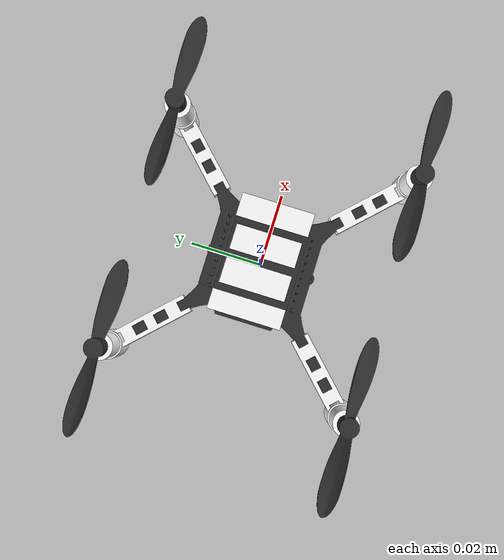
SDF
<?xml version='1.0'?>
<sdf version='1.7'>
  <model name='SAR_Base' canonical_link='SAR_Body'>
    <pose>0 0 0 0 0 0</pose>   <!--the pose is relative to the world by default-->

    <!--SAR_Body-->
    <link name='SAR_Body'>
        <pose>0 0 0 0 0 0</pose>
        <inertial> <!--inertial properties of the link mass, inertia matix-->
            <mass>37.0e-3</mass>
            <inertia>
                <ixx>17.20e-6</ixx>
                <ixy>0</ixy>
                <ixz>0</ixz>
                <iyy>17.70e-6</iyy>
                <iyz>0</iyz>
                <izz>34.20e-6</izz>
            </inertia>
            <pose>0 0 0 0 0 0</pose>
        </inertial>
        <pose>0 0 0 0 0 0</pose>
        <gravity>1</gravity>
        <self_collide>0</self_collide>
        <kinematic>0</kinematic>
        <enable_wind>0</enable_wind>

        <sensor name="imu" type="imu">
        <always_on>1</always_on>
        <update_rate>100</update_rate>
        <visualize>true</visualize>
        <topic>imu</topic>
        <enable_metrics>true</enable_metrics>
        </sensor>

        <visual name='Crazyflie_Base_Assembly'>
            <pose>0 0 0 0 0 0</pose>
            <geometry>
            <mesh>
                <uri>model://SAR_Base/meshes/Crazyflie_Base_Body.STL</uri>
                <scale>1 1 1</scale>
            </mesh>
            </geometry>
            <material>
                <!--DarkGrey-->
                <ambient>0.175 0.175 0.175 1</ambient>
                <diffuse>0.175 0.175 0.175 1</diffuse>
                <specular>0.175 0.175 0.175 1.00</specular>
            <lighting>1</lighting>
            </material>
        </visual>

        <visual name='Crazyflie_Motor_Arms'>
            <pose>0 0 0 0 0 0</pose>
            <geometry>
            <mesh>
                <uri>model://SAR_Base/meshes/Crazyflie_Motor_Arms.STL</uri>
                <scale>1 1 1</scale>
            </mesh>
            </geometry>
            <material>
                <!--White-->
                <ambient>1 1 1 1</ambient>
                <diffuse>1 1 1 1</diffuse>
                <specular>0.1 0.1 0.1 0.128</specular>
            <lighting>1</lighting>
            </material>
        </visual>

        <collision name='Body_Collision_Prop_1'>
            <pose>33.0e-3 -33.0e-3 9.25e-3 0 0 0</pose>
            <geometry>
            <cylinder>
                <length>18.5e-3</length>
                <radius>23.0e-3</radius>
            </cylinder>
            </geometry>
        </collision>

        <collision name='Body_Collision_Prop_2'>
            <pose>-33.0e-3 -33.0e-3 9.25e-3 0 0 0</pose>
            <geometry>
            <cylinder>
                <length>18.5e-3</length>
                <radius>23.0e-3</radius>
            </cylinder>
            </geometry>
        </collision>

        <collision name='Body_Collision_Prop_3'>
            <pose>-33.0e-3 33.0e-3 9.25e-3 0 0 0</pose>
            <geometry>
            <cylinder>
                <length>18.5e-3</length>
                <radius>23.0e-3</radius>
            </cylinder>
            </geometry>
        </collision>

        <collision name='Body_Collision_Prop_4'>
            <pose>33.0e-3 33.0e-3 9.25e-3 0 0 0</pose>
            <geometry>
            <cylinder>
                <length>18.5e-3</length>
                <radius>23.0e-3</radius>
            </cylinder>
            </geometry>
        </collision>

    </link>

    <link name='Prop_1'>
        <inertial>
            <mass>1e-6</mass>
            <inertia>
                <ixx>1e-6</ixx>
                <ixy>0</ixy>
                <ixz>0</ixz>
                <iyy>1e-6</iyy>
                <iyz>0</iyz>
                <izz>1e-6</izz>
            </inertia>
            <pose>0 0 0 0 0 0</pose>
        </inertial>
        <pose>33.0e-3 -33.0e-3 16.0e-3 0 0 0</pose>
        <gravity>1</gravity>
        <self_collide>0</self_collide>
        <visual name='Crazyflie_Propeller_1'>
            <pose>0 0 0 0 0 0</pose>
            <geometry>
                <mesh>
                    <uri>model://SAR_Base/meshes/Crazyflie_Propeller.STL</uri>
                    <scale>1 1 1</scale>
                </mesh>
            </geometry>
            <material>
                <!--DarkGrey-->
                <ambient>0.175 0.175 0.175 1</ambient>
                <diffuse>0.175 0.175 0.175 1</diffuse>
                <specular>0.175 0.175 0.175 1.00</specular>
            <lighting>1</lighting>
            </material>
        </visual>
    </link>

    <link name='Prop_2'>
        <inertial>
            <mass>1e-6</mass>
            <inertia>
                <ixx>1e-6</ixx>
                <ixy>0</ixy>
                <ixz>0</ixz>
                <iyy>1e-6</iyy>
                <iyz>0</iyz>
                <izz>1e-6</izz>
            </inertia>
            <pose>0 0 0 0 0 0</pose>
        </inertial>
        <pose>-33.0e-3 -33.0e-3 16.0e-3 0 0 0</pose>
        <gravity>1</gravity>
        <self_collide>0</self_collide>
        <visual name='Crazyflie_Propeller_2'>
            <pose>0 0 0 0 0 0</pose>
            <geometry>
                <mesh>
                    <uri>model://SAR_Base/meshes/Crazyflie_Propeller.STL</uri>
                    <scale>1 1 1</scale>
                </mesh>
            </geometry>
            <material>
                <!--DarkGrey-->
                <ambient>0.175 0.175 0.175 1</ambient>
                <diffuse>0.175 0.175 0.175 1</diffuse>
                <specular>0.175 0.175 0.175 1.00</specular>
            <lighting>1</lighting>
            </material>
        </visual>
    </link>

    <link name='Prop_3'>
    <inertial>
        <mass>1e-6</mass>
        <inertia>
            <ixx>1e-6</ixx>
            <ixy>0</ixy>
            <ixz>0</ixz>
            <iyy>1e-6</iyy>
            <iyz>0</iyz>
            <izz>1e-6</izz>
        </inertia>
        <pose>0 0 0 0 0 0</pose>
    </inertial>
    <pose>-33.0e-3 33.0e-3 16.0e-3 0 0 0</pose>
    <gravity>1</gravity>
    <self_collide>0</self_collide>
        <visual name='Crazyflie_Propeller_3'>
            <pose>0 0 0 0 0 0</pose>
            <geometry>
            <mesh>
                <uri>model://SAR_Base/meshes/Crazyflie_Propeller.STL</uri>
                <scale>1 1 1</scale>
            </mesh>
            </geometry>
                <material>
                    <!--DarkGrey-->
                    <ambient>0.175 0.175 0.175 1</ambient>
                    <diffuse>0.175 0.175 0.175 1</diffuse>
                    <specular>0.175 0.175 0.175 1.00</specular>
                <lighting>1</lighting>
                </material>
        </visual>
    </link>

    <link name='Prop_4'>
    <inertial>
        <mass>1e-6</mass>
        <inertia>
            <ixx>1e-6</ixx>
            <ixy>0</ixy>
            <ixz>0</ixz>
            <iyy>1e-6</iyy>
            <iyz>0</iyz>
            <izz>1e-6</izz>
        </inertia>
        <pose>0 0 0 0 0 0</pose>
    </inertial>
    <pose>33.0e-3 33.0e-3 16.0e-3 0 0 0</pose>
    <gravity>1</gravity>
    <self_collide>0</self_collide>
        <visual name='Crazyflie_Propeller_4'>
            <pose>0 0 0 0 0 0</pose>
            <geometry>
                <mesh>
                    <uri>model://SAR_Base/meshes/Crazyflie_Propeller.STL</uri>
                    <scale>1 1 1</scale>
                </mesh>
            </geometry>
                <material>
                    <!--DarkGrey-->
                    <ambient>0.175 0.175 0.175 1</ambient>
                    <diffuse>0.175 0.175 0.175 1</diffuse>
                    <specular>0.175 0.175 0.175 1.00</specular>
                <lighting>1</lighting>
                </material>
        </visual>
    </link>

    <joint name='Prop_1_Joint' type='revolute'>
        <pose relative_to='Prop_1'/>
        <parent>SAR_Body</parent>
        <child>Prop_1</child>
        <axis>
            <xyz expressed_in='__model__'>0 0 1</xyz>
            <limit>
                <lower>-1.79769e+308</lower> <!--negative infinity-->
                <upper>1.79769e+308</upper> <!--positive infinity-->
                <effort>-1</effort>
                <velocity>-1</velocity>
            </limit>
            <dynamics>
                <spring_reference>0</spring_reference>
                <spring_stiffness>0</spring_stiffness>
            </dynamics>
        </axis>
    </joint>

    <joint name='Prop_2_Joint' type='revolute'>
        <pose relative_to='Prop_2'/>
        <parent>SAR_Body</parent>
        <child>Prop_2</child>
        <axis>
            <xyz expressed_in='__model__'>0 0 1</xyz>
            <limit>
                <lower>-1.79769e+308</lower>
                <upper>1.79769e+308</upper>
                <effort>-1</effort>
                <velocity>-1</velocity>
            </limit>
            <dynamics>
                <spring_reference>0</spring_reference>
                <spring_stiffness>0</spring_stiffness>
            </dynamics>
        </axis>
    </joint>

    <joint name='Prop_3_Joint' type='revolute'>
        <pose relative_to='Prop_3'/>
        <parent>SAR_Body</parent>
        <child>Prop_3</child>
        <axis>
            <xyz expressed_in='__model__'>0 0 1</xyz>
            <limit>
                <lower>-1.79769e+308</lower>
                <upper>1.79769e+308</upper>
                <effort>-1</effort>
                <velocity>-1</velocity>
            </limit>
            <dynamics>
                <spring_reference>0</spring_reference>
                <spring_stiffness>0</spring_stiffness>
            </dynamics>
        </axis>
    </joint>

    <joint name='Prop_4_Joint' type='revolute'>
        <pose relative_to='Prop_4'/>
        <parent>SAR_Body</parent>t
        <child>Prop_4</child>
        <axis>
            <xyz expressed_in='__model__'>0 0 1</xyz>
            <limit>
                <lower>-1.79769e+308</lower>
                <upper>1.79769e+308</upper>
                <effort>-1</effort>
                <velocity>-1</velocity>
            </limit>
            <dynamics>
                <spring_reference>0</spring_reference>
                <spring_stiffness>0</spring_stiffness>
            </dynamics>
        </axis>
    </joint>

    <plugin
        filename="/home/dlee/ros2_ws/install/sar_gazebo/lib/libImu_Plugin.so"
        name="gz::sim::systems::Imu_Plugin">
    </plugin>

    <plugin
        filename="/home/dlee/ros2_ws/install/sar_gazebo/lib/libVicon_Plugin.so"
        name="gz::sim::systems::Vicon_Plugin">
        <link_name>SAR_Body</link_name>
    </plugin>
    <plugin
        filename="/home/dlee/ros2_ws/install/sar_gazebo/lib/libMotor_Plugin.so"
        name="gz::sim::systems::Motor_Plugin">
        <Motor_Number>1</Motor_Number>
        <joint_name>Prop_1_Joint</joint_name>
        <link_name>Prop_1</link_name>
        <canonicallink_name>SAR_Body</canonicallink_name>
        <Turning_Direction>ccw</Turning_Direction>
        <Visual_Slowdown>200</Visual_Slowdown>
    </plugin>

    <plugin
        filename="/home/dlee/ros2_ws/install/sar_gazebo/lib/libMotor_Plugin.so"
        name="gz::sim::systems::Motor_Plugin">
        <Motor_Number>2</Motor_Number>
        <joint_name>Prop_2_Joint</joint_name>
        <link_name>Prop_2</link_name>
        <canonicallink_name>SAR_Body</canonicallink_name>
        <Turning_Direction>cw</Turning_Direction>
        <Visual_Slowdown>200</Visual_Slowdown>
    </plugin>

    <plugin
        filename="/home/dlee/ros2_ws/install/sar_gazebo/lib/libMotor_Plugin.so"
        name="gz::sim::systems::Motor_Plugin">
        <Motor_Number>3</Motor_Number>
        <joint_name>Prop_3_Joint</joint_name>
        <link_name>Prop_3</link_name>
        <canonicallink_name>SAR_Body</canonicallink_name>
        <Turning_Direction>ccw</Turning_Direction>
        <Visual_Slowdown>200</Visual_Slowdown>
    </plugin>

    <plugin
        filename="/home/dlee/ros2_ws/install/sar_gazebo/lib/libMotor_Plugin.so"
        name="gz::sim::systems::Motor_Plugin">
        <Motor_Number>4</Motor_Number>
        <joint_name>Prop_4_Joint</joint_name>
        <link_name>Prop_4</link_name>
        <canonicallink_name>SAR_Body</canonicallink_name>
        <Turning_Direction>cw</Turning_Direction>
        <Visual_Slowdown>200</Visual_Slowdown>
    </plugin>

    <static>0</static>
    <allow_auto_disable>1</allow_auto_disable>
  </model>
</sdf>
